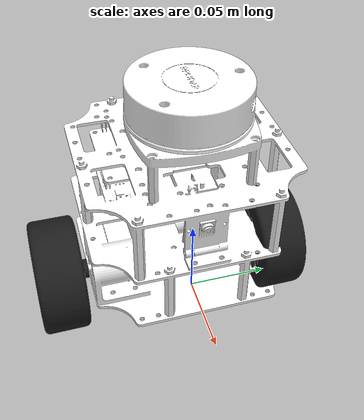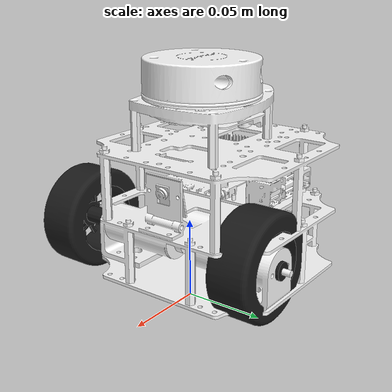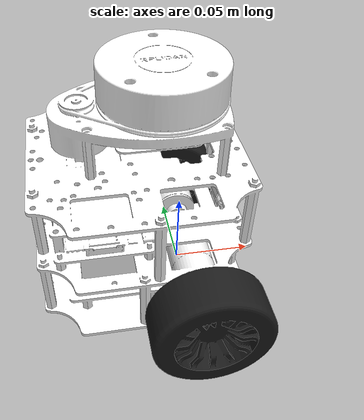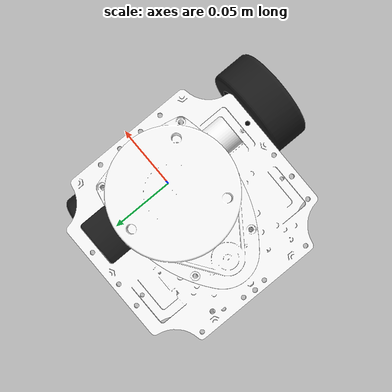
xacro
<?xml version="1.0" ?>
<robot name="robot_description"  xmlns:xacro="http://ros.org/wiki/xacro">

  <xacro:arg name="robot_name" default=""/>

  <xacro:include filename="$(find robot_description)/urdf/robot_description.gazebo.xacro" />

  <link name="$(arg robot_name)/base_footprint"/>

  <joint name="base_joint" type="fixed">
    <parent link="$(arg robot_name)/base_footprint"/>
    <child link="$(arg robot_name)/base_link"/>
    <origin xyz="0.0 0.0 0.012" rpy="0 0 0"/>
  </joint>

  <link
    name="$(arg robot_name)/base_link">
    <inertial>
      <origin
        xyz="-0.021363490239433 0.000185677952833835 0.0417013760059846"
        rpy="0 0 0" />
      <mass
        value="0.1" />
      <inertia
        ixx="0.00169347433894092"
        ixy="-2.48653191534453E-07"
        ixz="3.6777445179091E-05"
        iyy="0.00104562302644335"
        iyz="-4.01932028426777E-06"
        izz="0.00148226749250531" />
    </inertial>
    <visual>
      <origin
        xyz="0 0 0"
        rpy="0 0 0" />
      <geometry>
        <mesh
          filename="package://robot_description/meshes/base_link.STL" />
      </geometry>
      <material
        name="">
        <color
          rgba="1 1 1 1" />
      </material>
    </visual>
    <collision>
      <origin
        xyz="0 0 0"
        rpy="0 0 0" />
      <geometry>
        <mesh
          filename="package://robot_description/meshes/base_link.STL" />
      </geometry>
    </collision>
  </link>
  <link
    name="$(arg robot_name)/imu">
    <inertial>
      <origin
        xyz="3.46944695195361E-18 0 -0.00353385896202057"
        rpy="0 0 0" />
      <mass
        value="0.000834" />
      <inertia
        ixx="1.72751258992806E-08"
        ixy="2.49134059713724E-24"
        ixz="-2.52435489670724E-26"
        iyy="1.01251258992806E-08"
        iyz="1.8466691376894E-25"
        izz="2.3801E-08" />
    </inertial>
    <visual>
      <origin
        xyz="0 0 0"
        rpy="0 0 0" />
      <geometry>
        <mesh
          filename="package://robot_description/meshes/imu.STL" />
      </geometry>
      <material
        name="">
        <color
          rgba="1 1 1 1" />
      </material>
    </visual>
    <collision>
      <origin
        xyz="0 0 0"
        rpy="0 0 0" />
      <geometry>
        <mesh
          filename="package://robot_description/meshes/imu.STL" />
      </geometry>
    </collision>
  </link>
  <joint
    name="imu_joint"
    type="fixed">
    <origin
      xyz="-0.056956 -0.0059543 0.072756"
      rpy="0 5.2369E-16 0" />
    <parent
      link="$(arg robot_name)/base_link" />
    <child
      link="$(arg robot_name)/imu" />
    <axis
      xyz="0 0 0" />
  </joint>
  <link
    name="$(arg robot_name)/base_camera_link">
    <inertial>
      <origin
        xyz="-0.0045346942299942 1.38777878078145E-17 -0.00179125965737512"
        rpy="0 0 0" />
      <mass
        value="0.00100487943921971" />
      <inertia
        ixx="7.55677391275611E-08"
        ixy="-2.39038796583022E-24"
        ixz="-1.37755038601046E-09"
        iyy="3.94938932151791E-08"
        iyz="2.43323642233816E-23"
        izz="4.01523294449251E-08" />
    </inertial>
    <visual>
      <origin
        xyz="0 0 0"
        rpy="0 0 0" />
      <geometry>
        <mesh
          filename="package://robot_description/meshes/base_camera_link.STL" />
      </geometry>
      <material
        name="">
        <color
          rgba="1 1 1 1" />
      </material>
    </visual>
    <collision>
      <origin
        xyz="0 0 0"
        rpy="0 0 0" />
      <geometry>
        <mesh
          filename="package://robot_description/meshes/base_camera_link.STL" />
      </geometry>
    </collision>
  </link>
  <joint
    name="camera_joint"
    type="fixed">
    <origin
      xyz="0.0277 0 0.0623"
      rpy="-2.2337E-16 0.2 0" />
    <parent
      link="$(arg robot_name)/base_link" />
    <child
      link="$(arg robot_name)/base_camera_link" />
    <axis
      xyz="0 0 0" />
  </joint>
  <link
    name="$(arg robot_name)/base_laser_link">
    <inertial>
      <origin
        xyz="-0.00911214120076251 0.000185677952834168 -0.0842986239940154"
        rpy="0 0 0" />
      <mass
        value="0.1" />
      <inertia
        ixx="0.00169347433894092"
        ixy="-2.4865319153732E-07"
        ixz="3.67774451790908E-05"
        iyy="0.00104562302644335"
        iyz="-4.01932028426874E-06"
        izz="0.00148226749250531" />
    </inertial>
    <visual>
      <origin
        xyz="0 0 0"
        rpy="0 0 0" />
      <geometry>
        <mesh
          filename="package://robot_description/meshes/base_laser_link.STL" />
      </geometry>
      <material
        name="">
        <color
          rgba="1 1 1 1" />
      </material>
    </visual>
    <collision>
      <origin
        xyz="0 0 0"
        rpy="0 0 0" />
      <geometry>
        <mesh
          filename="package://robot_description/meshes/base_laser_link.STL" />
      </geometry>
    </collision>
  </link>
  <joint
    name="laser_joint"
    type="fixed">
    <origin
      xyz="-0.012251 0 0.126"
      rpy="-1.6843E-15 -1.0776E-15 4.3793E-15" />
    <parent
      link="$(arg robot_name)/base_link" />
    <child
      link="$(arg robot_name)/base_laser_link" />
    <axis
      xyz="0 0 0" />
  </joint>
  <link
    name="$(arg robot_name)/left_wheel_link">
    <inertial>
      <origin
        xyz="-6.93889390390723E-18 3.46944695195361E-18 0.017494370940819"
        rpy="0 0 0" />
      <mass
        value="0.0561341413751443" />
      <inertia
        ixx="2.45284373382495E-05"
        ixy="1.79487710154599E-21"
        ixz="7.36303183829231E-18"
        iyy="2.45284373382495E-05"
        iyz="1.73397416098309E-17"
        izz="4.23355136524843E-05" />
    </inertial>
    <visual>
      <origin
        xyz="0 0 0"
        rpy="0 0 0" />
      <geometry>
        <mesh
          filename="package://robot_description/meshes/left_wheel_link.STL" />
      </geometry>
      <material
        name="">
        <color
          rgba="0.109803921568627 0.109803921568627 0.109803921568627 1" />
      </material>
    </visual>
    <collision>
      <origin
        xyz="0 0 0"
        rpy="0 0 0" />
      <geometry>
        <mesh
          filename="package://robot_description/meshes/left_wheel_link.STL" />
      </geometry>
    </collision>
  </link>
  <joint
    name="left_wheel_joint"
    type="continuous">
    <origin
      xyz="0 0.0658 0.02275"
      rpy="-1.5708 5.2369E-16 8.6736E-17" />
    <parent
      link="$(arg robot_name)/base_link" />
    <child
      link="$(arg robot_name)/left_wheel_link" />
    <axis
      xyz="0 0 1" />
    <limit
      effort="100"
      velocity="100" />
  </joint>
  <link
    name="$(arg robot_name)/right_wheel_link">
    <inertial>
      <origin
        xyz="3.46944695195361E-18 -1.73472347597681E-18 -0.017494370940819"
        rpy="0 0 0" />
      <mass
        value="0.0561341413751443" />
      <inertia
        ixx="2.45284373382495E-05"
        ixy="-1.10855737450343E-21"
        ixz="-7.37237567686968E-18"
        iyy="2.45284373382495E-05"
        iyz="1.734064769358E-17"
        izz="4.23355136524843E-05" />
    </inertial>
    <visual>
      <origin
        xyz="0 0 0"
        rpy="0 0 0" />
      <geometry>
        <mesh
          filename="package://robot_description/meshes/right_wheel_link.STL" />
      </geometry>
      <material
        name="">
        <color
          rgba="0.109803921568627 0.109803921568627 0.109803921568627 1" />
      </material>
    </visual>
    <collision>
      <origin
        xyz="0 0 0"
        rpy="0 0 0" />
      <geometry>
        <mesh
          filename="package://robot_description/meshes/right_wheel_link.STL" />
      </geometry>
    </collision>
  </link>
  <joint
    name="right_wheel_joint"
    type="continuous">
    <origin
      xyz="0 -0.0658 0.02275"
      rpy="1.5708 -5.2369E-16 3.1416" />
    <parent
      link="$(arg robot_name)/base_link" />
    <child
      link="$(arg robot_name)/right_wheel_link" />
    <axis
      xyz="0 0 1" />
    <limit
      effort="100"
      velocity="100" />
  </joint>
  <link
    name="$(arg robot_name)/ball_wheel_link">
    <inertial>
      <origin
        xyz="-0.00805 0 0"
        rpy="0 0 0" />
      <mass
        value="0.00218512482182764" />
      <inertia
        ixx="5.66406205065944E-08"
        ixy="0"
        ixz="0"
        iyy="5.66406205065944E-08"
        iyz="0"
        izz="5.66406205065944E-08" />
    </inertial>
    <visual>
      <origin
        xyz="0 0 0"
        rpy="0 0 0" />
      <geometry>
        <mesh
          filename="package://robot_description/meshes/ball_wheel_link.STL" />
      </geometry>
      <material
        name="">
        <color
          rgba="1 1 1 1" />
      </material>
    </visual>
    <collision>
      <origin
        xyz="0 0 0"
        rpy="0 0 0" />
      <geometry>
        <mesh
          filename="package://robot_description/meshes/ball_wheel_link.STL" />
      </geometry>
    </collision>
  </link>
  <joint
    name="ball_wheel_joint"
    type="fixed">
    <origin
      xyz="-0.06445 0 -0.0028"
      rpy="0 5.2369E-16 0" />
    <parent
      link="$(arg robot_name)/base_link" />
    <child
      link="$(arg robot_name)/ball_wheel_link" />
    <axis
      xyz="0 0 0" />
  </joint>
</robot>
